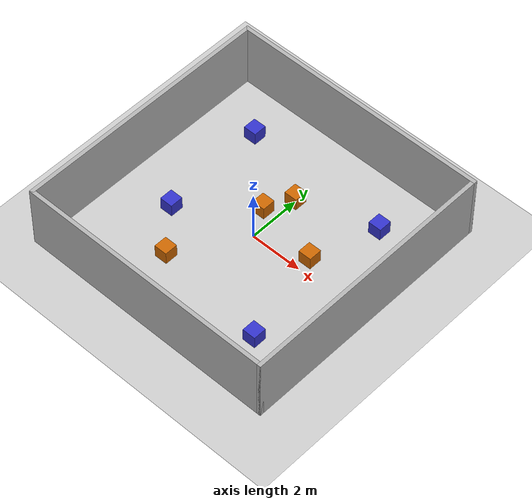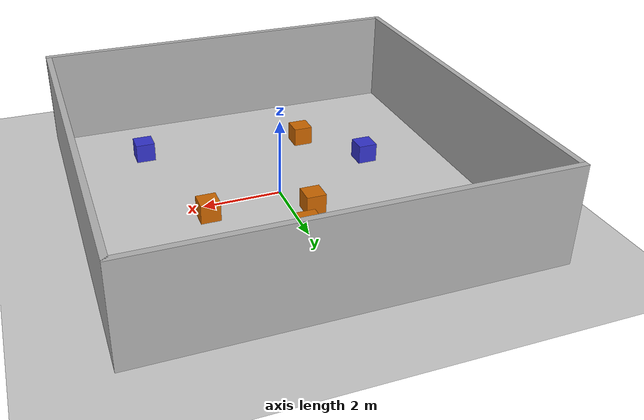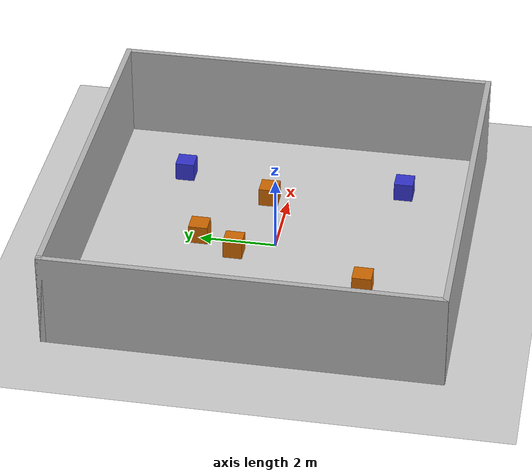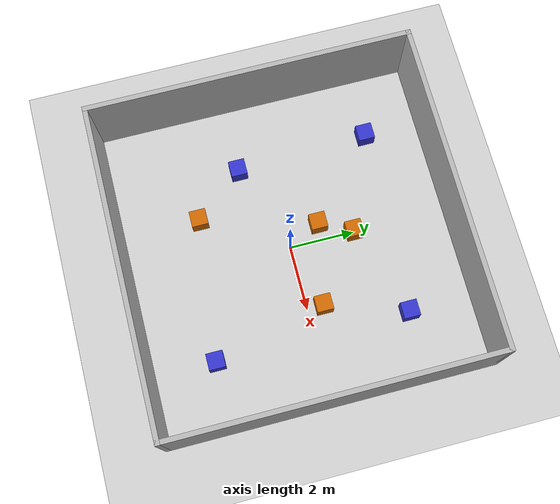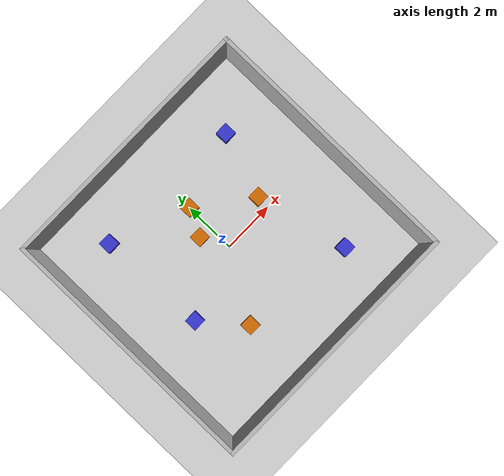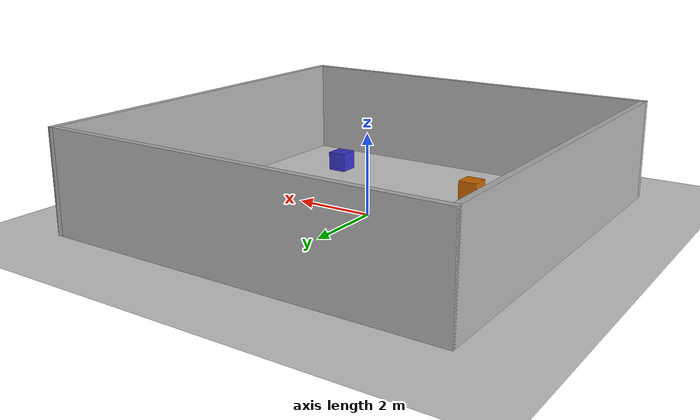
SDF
<?xml version="1.0" ?>
<sdf version="1.8">
  <world name="drl_training">

    <!-- Required gz-sim plugins -->
    <plugin filename="gz-sim-physics-system"        name="gz::sim::systems::Physics"/>
    <plugin filename="gz-sim-sensors-system"        name="gz::sim::systems::Sensors">
      <render_engine>ogre2</render_engine>
    </plugin>
    <plugin filename="gz-sim-user-commands-system"  name="gz::sim::systems::UserCommands"/>
    <plugin filename="gz-sim-scene-broadcaster-system" name="gz::sim::systems::SceneBroadcaster"/>

    <physics name="1ms" type="ignored">
      <max_step_size>0.001</max_step_size>
      <real_time_factor>1.0</real_time_factor>
    </physics>

    <light type="directional" name="sun">
      <cast_shadows>true</cast_shadows>
      <pose>0 0 10 0 0 0</pose>
      <diffuse>0.8 0.8 0.8 1</diffuse>
      <specular>0.2 0.2 0.2 1</specular>
      <direction>-0.5 0.1 -0.9</direction>
    </light>

    <!-- Ground plane -->
    <model name="ground_plane">
      <static>true</static>
      <link name="link">
        <collision name="collision">
          <geometry><plane><normal>0 0 1</normal><size>20 20</size></plane></geometry>
        </collision>
        <visual name="visual">
          <geometry><plane><normal>0 0 1</normal><size>20 20</size></plane></geometry>
          <material>
            <ambient>0.8 0.8 0.8 1</ambient>
            <diffuse>0.8 0.8 0.8 1</diffuse>
          </material>
        </visual>
      </link>
    </model>

    <!-- 10×10 m room walls (inner edge at ±4.925 m) -->
    <model name="walls">
      <static>true</static>
      <!-- North wall -->
      <link name="wall_north">
        <pose>0 4.925 1.25 0 0 0</pose>
        <collision name="col"><geometry><box><size>10 0.15 2.5</size></box></geometry></collision>
        <visual    name="vis"><geometry><box><size>10 0.15 2.5</size></box></geometry>
          <material><ambient>0.7 0.7 0.7 1</ambient><diffuse>0.7 0.7 0.7 1</diffuse></material>
        </visual>
      </link>
      <!-- South wall -->
      <link name="wall_south">
        <pose>0 -4.925 1.25 0 0 0</pose>
        <collision name="col"><geometry><box><size>10 0.15 2.5</size></box></geometry></collision>
        <visual    name="vis"><geometry><box><size>10 0.15 2.5</size></box></geometry>
          <material><ambient>0.7 0.7 0.7 1</ambient><diffuse>0.7 0.7 0.7 1</diffuse></material>
        </visual>
      </link>
      <!-- East wall -->
      <link name="wall_east">
        <pose>4.925 0 1.25 0 0 0</pose>
        <collision name="col"><geometry><box><size>0.15 10 2.5</size></box></geometry></collision>
        <visual    name="vis"><geometry><box><size>0.15 10 2.5</size></box></geometry>
          <material><ambient>0.7 0.7 0.7 1</ambient><diffuse>0.7 0.7 0.7 1</diffuse></material>
        </visual>
      </link>
      <!-- West wall -->
      <link name="wall_west">
        <pose>-4.925 0 1.25 0 0 0</pose>
        <collision name="col"><geometry><box><size>0.15 10 2.5</size></box></geometry></collision>
        <visual    name="vis"><geometry><box><size>0.15 10 2.5</size></box></geometry>
          <material><ambient>0.7 0.7 0.7 1</ambient><diffuse>0.7 0.7 0.7 1</diffuse></material>
        </visual>
      </link>
    </model>

    <model name="obstacle1">
      <pose>-2.93 3.17 0.25 0 0 0</pose>
      <link name="link">
        <inertial><mass>5.0</mass></inertial>
        <collision name="col"><geometry><box><size>0.5 0.5 0.5</size></box></geometry></collision>
        <visual    name="vis"><geometry><box><size>0.5 0.5 0.5</size></box></geometry>
          <material><ambient>0.2 0.2 0.8 1</ambient><diffuse>0.2 0.2 0.8 1</diffuse></material>
        </visual>
      </link>
    </model>

    <model name="obstacle2">
      <pose>2.86 -3.0 0.25 0 0 0</pose>
      <link name="link">
        <inertial><mass>5.0</mass></inertial>
        <collision name="col"><geometry><box><size>0.5 0.5 0.5</size></box></geometry></collision>
        <visual    name="vis"><geometry><box><size>0.5 0.5 0.5</size></box></geometry>
          <material><ambient>0.2 0.2 0.8 1</ambient><diffuse>0.2 0.2 0.8 1</diffuse></material>
        </visual>
      </link>
    </model>

    <model name="obstacle3">
      <pose>-2.77 -0.96 0.25 0 0 0</pose>
      <link name="link">
        <inertial><mass>5.0</mass></inertial>
        <collision name="col"><geometry><box><size>0.5 0.5 0.5</size></box></geometry></collision>
        <visual    name="vis"><geometry><box><size>0.5 0.5 0.5</size></box></geometry>
          <material><ambient>0.2 0.2 0.8 1</ambient><diffuse>0.2 0.2 0.8 1</diffuse></material>
        </visual>
      </link>
    </model>

    <model name="obstacle4">
      <pose>2.83 2.93 0.25 0 0 0</pose>
      <link name="link">
        <inertial><mass>5.0</mass></inertial>
        <collision name="col"><geometry><box><size>0.5 0.5 0.5</size></box></geometry></collision>
        <visual    name="vis"><geometry><box><size>0.5 0.5 0.5</size></box></geometry>
          <material><ambient>0.2 0.2 0.8 1</ambient><diffuse>0.2 0.2 0.8 1</diffuse></material>
        </visual>
      </link>
    </model>

    <!-- Obstacles 5–8 start off at edges; randomised each episode -->
    <model name="obstacle5">
      <pose>0.0 2.0 0.25 0 0 0</pose>
      <link name="link">
        <inertial><mass>5.0</mass></inertial>
        <collision name="col"><geometry><box><size>0.5 0.5 0.5</size></box></geometry></collision>
        <visual    name="vis"><geometry><box><size>0.5 0.5 0.5</size></box></geometry>
          <material><ambient>0.8 0.4 0.0 1</ambient><diffuse>0.8 0.4 0.0 1</diffuse></material>
        </visual>
      </link>
    </model>

    <model name="obstacle6">
      <pose>-1.5 -2.5 0.25 0 0 0</pose>
      <link name="link">
        <inertial><mass>5.0</mass></inertial>
        <collision name="col"><geometry><box><size>0.5 0.5 0.5</size></box></geometry></collision>
        <visual    name="vis"><geometry><box><size>0.5 0.5 0.5</size></box></geometry>
          <material><ambient>0.8 0.4 0.0 1</ambient><diffuse>0.8 0.4 0.0 1</diffuse></material>
        </visual>
      </link>
    </model>

    <model name="obstacle7">
      <pose>2.0 0.5 0.25 0 0 0</pose>
      <link name="link">
        <inertial><mass>5.0</mass></inertial>
        <collision name="col"><geometry><box><size>0.5 0.5 0.5</size></box></geometry></collision>
        <visual    name="vis"><geometry><box><size>0.5 0.5 0.5</size></box></geometry>
          <material><ambient>0.8 0.4 0.0 1</ambient><diffuse>0.8 0.4 0.0 1</diffuse></material>
        </visual>
      </link>
    </model>

    <model name="obstacle8">
      <pose>-0.5 1.0 0.25 0 0 0</pose>
      <link name="link">
        <inertial><mass>5.0</mass></inertial>
        <collision name="col"><geometry><box><size>0.5 0.5 0.5</size></box></geometry></collision>
        <visual    name="vis"><geometry><box><size>0.5 0.5 0.5</size></box></geometry>
          <material><ambient>0.8 0.4 0.0 1</ambient><diffuse>0.8 0.4 0.0 1</diffuse></material>
        </visual>
      </link>
    </model>

  </world>
</sdf>
